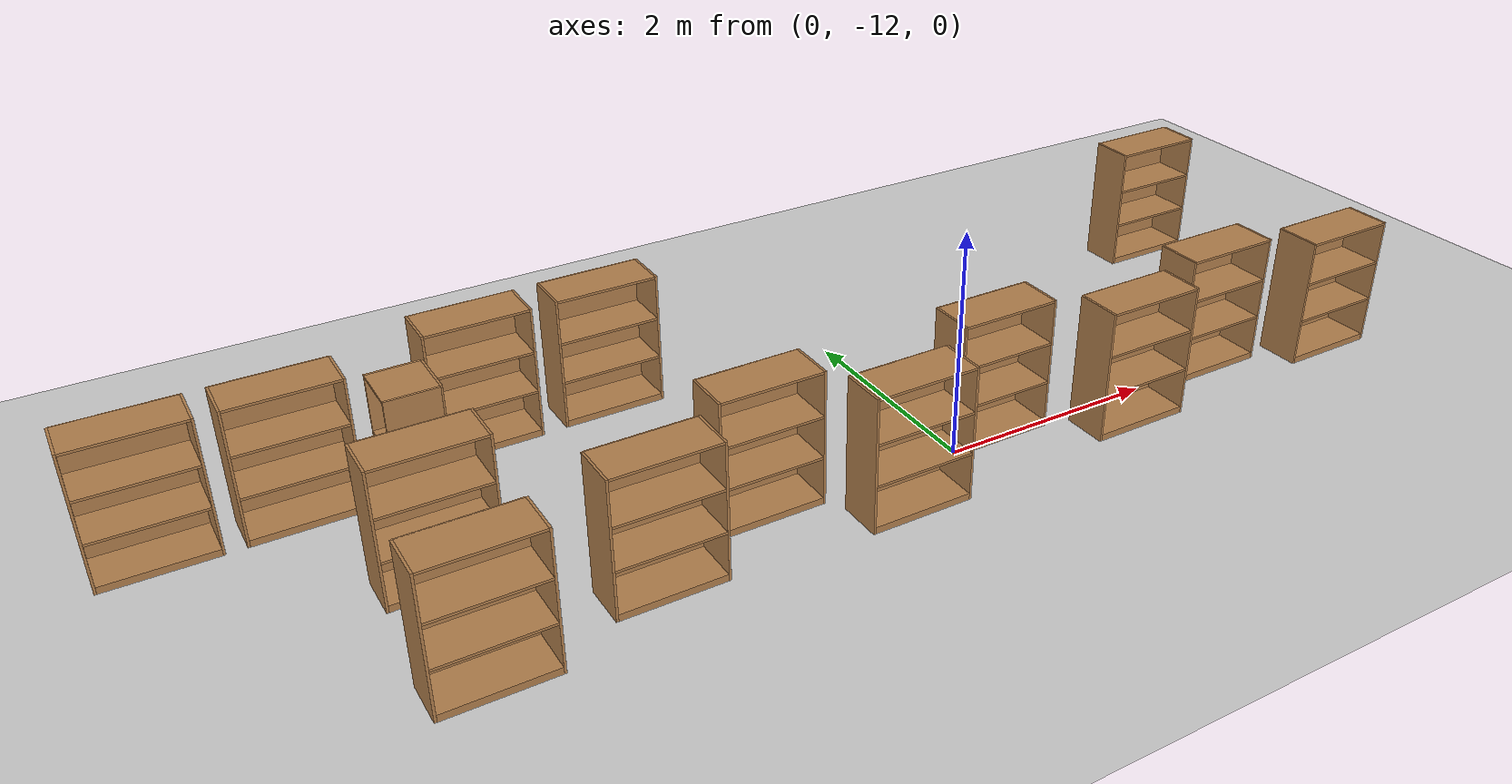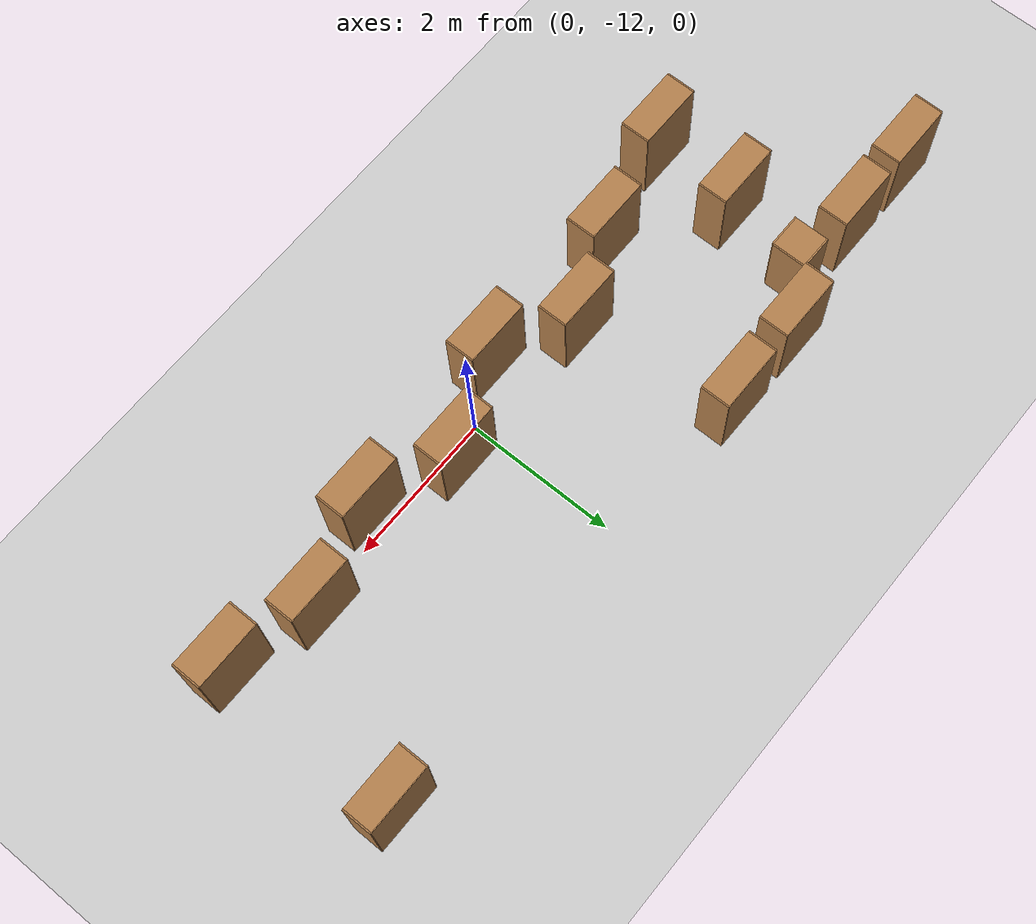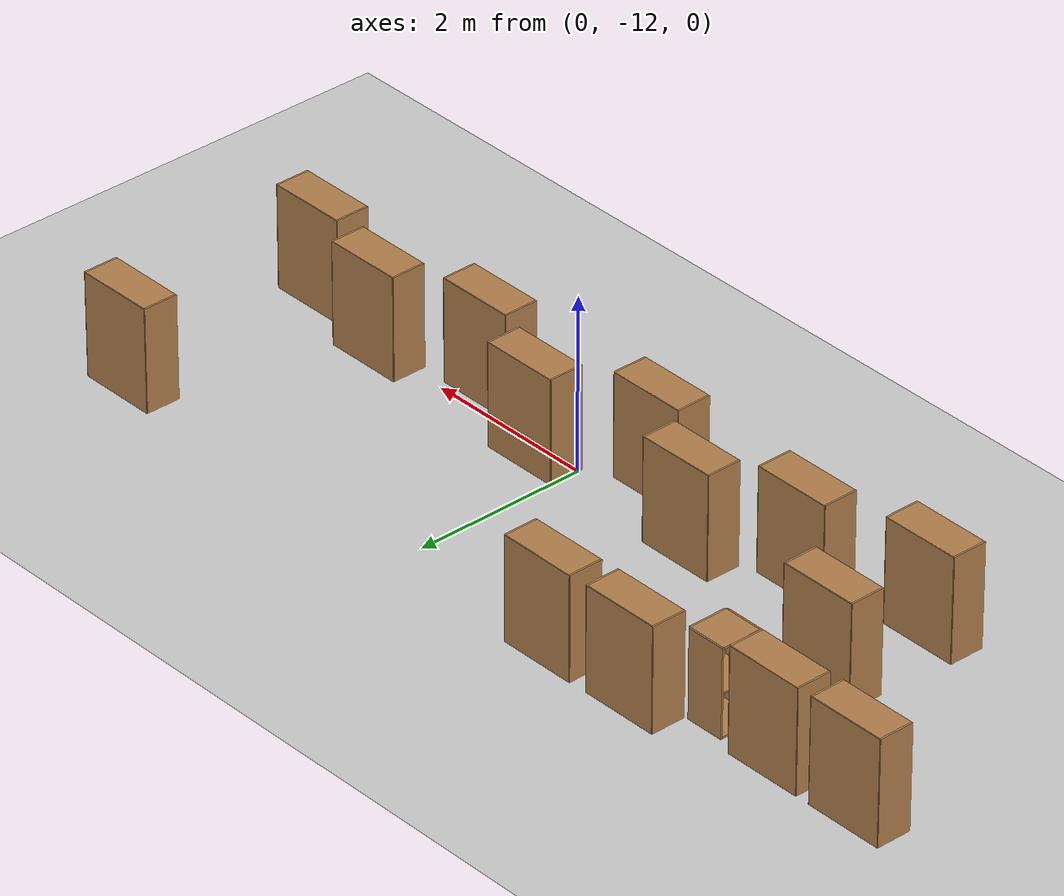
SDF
<sdf version="1.6">
 <world name="default">
  <model name="ground_plane">
   <static>1</static>
   <link name="link">
    <collision name="collision">
     <geometry><plane><normal>0 0 1</normal><size>100 100</size></plane></geometry>
     <surface>
      <contact><collide_bitmask>65535</collide_bitmask></contact>
      <friction><ode><mu>100</mu><mu2>50</mu2></ode></friction>
     </surface>
    </collision>
    <visual name="visual">
     <cast_shadows>0</cast_shadows>
     <geometry><plane><normal>0 0 1</normal><size>100 100</size></plane></geometry>
     <material>
      <script><uri>file://media/materials/scripts/gazebo.material</uri><name>Gazebo/Grey</name></script>
     </material>
    </visual>
   </link>
  </model>
  <model name="bookshelf_clone_3">
   <static>1</static>
   <link name="link">
    <inertial><mass>1</mass></inertial>
    <collision name="back">
     <pose>0 0.005 0.6 0 -0 0</pose>
     <geometry><box><size>0.9 0.01 1.2</size></box></geometry>
    </collision>
    <visual name="visual1">
     <pose>0 0.005 0.6 0 -0 0</pose>
     <geometry><box><size>0.9 0.01 1.2</size></box></geometry>
     <material>
      <script><uri>file://media/materials/scripts/gazebo.material</uri><name>Gazebo/Wood</name></script>
     </material>
    </visual>
    <collision name="left_side">
     <pose>0.45 -0.195 0.6 0 -0 0</pose>
     <geometry><box><size>0.02 0.4 1.2</size></box></geometry>
    </collision>
    <visual name="visual2">
     <pose>0.45 -0.195 0.6 0 -0 0</pose>
     <geometry><box><size>0.02 0.4 1.2</size></box></geometry>
     <material>
      <script><uri>file://media/materials/scripts/gazebo.material</uri><name>Gazebo/Wood</name></script>
     </material>
    </visual>
    <collision name="right_side">
     <pose>-0.45 -0.195 0.6 0 -0 0</pose>
     <geometry><box><size>0.02 0.4 1.2</size></box></geometry>
    </collision>
    <visual name="visual3">
     <pose>-0.45 -0.195 0.6 0 -0 0</pose>
     <geometry><box><size>0.02 0.4 1.2</size></box></geometry>
     <material>
      <script><uri>file://media/materials/scripts/gazebo.material</uri><name>Gazebo/Wood</name></script>
     </material>
    </visual>
    <collision name="bottom">
     <pose>0 -0.195 0.03 0 -0 0</pose>
     <geometry><box><size>0.88 0.4 0.06</size></box></geometry>
    </collision>
    <visual name="visual4">
     <pose>0 -0.195 0.03 0 -0 0</pose>
     <geometry><box><size>0.88 0.4 0.06</size></box></geometry>
     <material>
      <script><uri>file://media/materials/scripts/gazebo.material</uri><name>Gazebo/Wood</name></script>
     </material>
    </visual>
    <collision name="top">
     <pose>0 -0.195 1.19 0 -0 0</pose>
     <geometry><box><size>0.88 0.4 0.02</size></box></geometry>
    </collision>
    <visual name="visual5">
     <pose>0 -0.195 1.19 0 -0 0</pose>
     <geometry><box><size>0.88 0.4 0.02</size></box></geometry>
     <material>
      <script><uri>file://media/materials/scripts/gazebo.material</uri><name>Gazebo/Wood</name></script>
     </material>
    </visual>
    <collision name="low_shelf">
     <pose>0 -0.195 0.43 0 -0 0</pose>
     <geometry><box><size>0.88 0.4 0.02</size></box></geometry>
    </collision>
    <visual name="visual6">
     <pose>0 -0.195 0.43 0 -0 0</pose>
     <geometry><box><size>0.88 0.4 0.02</size></box></geometry>
     <material>
      <script><uri>file://media/materials/scripts/gazebo.material</uri><name>Gazebo/Wood</name></script>
     </material>
    </visual>
    <collision name="high_shelf">
     <pose>0 -0.195 0.8 0 -0 0</pose>
     <geometry><box><size>0.88 0.4 0.02</size></box></geometry>
    </collision>
    <visual name="visual7">
     <pose>0 -0.195 0.8 0 -0 0</pose>
     <geometry><box><size>0.88 0.4 0.02</size></box></geometry>
     <material>
      <script><uri>file://media/materials/scripts/gazebo.material</uri><name>Gazebo/Wood</name></script>
     </material>
    </visual>
   </link>
   <pose>4.005 -9.56624 0 0 -0 0</pose>
  </model>
  <model name="bookshelf_clone_11">
   <static>1</static>
   <link name="link">
    <inertial><mass>1</mass></inertial>
    <collision name="back">
     <pose>0 0.005 0.6 0 -0 0</pose>
     <geometry><box><size>0.9 0.01 1.2</size></box></geometry>
    </collision>
    <visual name="visual1">
     <pose>0 0.005 0.6 0 -0 0</pose>
     <geometry><box><size>0.9 0.01 1.2</size></box></geometry>
     <material>
      <script><uri>file://media/materials/scripts/gazebo.material</uri><name>Gazebo/Wood</name></script>
     </material>
    </visual>
    <collision name="left_side">
     <pose>0.45 -0.195 0.6 0 -0 0</pose>
     <geometry><box><size>0.02 0.4 1.2</size></box></geometry>
    </collision>
    <visual name="visual2">
     <pose>0.45 -0.195 0.6 0 -0 0</pose>
     <geometry><box><size>0.02 0.4 1.2</size></box></geometry>
     <material>
      <script><uri>file://media/materials/scripts/gazebo.material</uri><name>Gazebo/Wood</name></script>
     </material>
    </visual>
    <collision name="right_side">
     <pose>-0.45 -0.195 0.6 0 -0 0</pose>
     <geometry><box><size>0.02 0.4 1.2</size></box></geometry>
    </collision>
    <visual name="visual3">
     <pose>-0.45 -0.195 0.6 0 -0 0</pose>
     <geometry><box><size>0.02 0.4 1.2</size></box></geometry>
     <material>
      <script><uri>file://media/materials/scripts/gazebo.material</uri><name>Gazebo/Wood</name></script>
     </material>
    </visual>
    <collision name="bottom">
     <pose>0 -0.195 0.03 0 -0 0</pose>
     <geometry><box><size>0.88 0.4 0.06</size></box></geometry>
    </collision>
    <visual name="visual4">
     <pose>0 -0.195 0.03 0 -0 0</pose>
     <geometry><box><size>0.88 0.4 0.06</size></box></geometry>
     <material>
      <script><uri>file://media/materials/scripts/gazebo.material</uri><name>Gazebo/Wood</name></script>
     </material>
    </visual>
    <collision name="top">
     <pose>0 -0.195 1.19 0 -0 0</pose>
     <geometry><box><size>0.88 0.4 0.02</size></box></geometry>
    </collision>
    <visual name="visual5">
     <pose>0 -0.195 1.19 0 -0 0</pose>
     <geometry><box><size>0.88 0.4 0.02</size></box></geometry>
     <material>
      <script><uri>file://media/materials/scripts/gazebo.material</uri><name>Gazebo/Wood</name></script>
     </material>
    </visual>
    <collision name="low_shelf">
     <pose>0 -0.195 0.43 0 -0 0</pose>
     <geometry><box><size>0.88 0.4 0.02</size></box></geometry>
    </collision>
    <visual name="visual6">
     <pose>0 -0.195 0.43 0 -0 0</pose>
     <geometry><box><size>0.88 0.4 0.02</size></box></geometry>
     <material>
      <script><uri>file://media/materials/scripts/gazebo.material</uri><name>Gazebo/Wood</name></script>
     </material>
    </visual>
    <collision name="high_shelf">
     <pose>0 -0.195 0.8 0 -0 0</pose>
     <geometry><box><size>0.88 0.4 0.02</size></box></geometry>
    </collision>
    <visual name="visual7">
     <pose>0 -0.195 0.8 0 -0 0</pose>
     <geometry><box><size>0.88 0.4 0.02</size></box></geometry>
     <material>
      <script><uri>file://media/materials/scripts/gazebo.material</uri><name>Gazebo/Wood</name></script>
     </material>
    </visual>
   </link>
   <pose>-2.13004 -9.5778 0 0 -0 0</pose>
  </model>
  <model name="bookshelf_clone_16">
   <static>1</static>
   <link name="link">
    <inertial><mass>1</mass></inertial>
    <collision name="back">
     <pose>0 0.005 0.6 0 -0 0</pose>
     <geometry><box><size>0.9 0.01 1.2</size></box></geometry>
    </collision>
    <visual name="visual1">
     <pose>0 0.005 0.6 0 -0 0</pose>
     <geometry><box><size>0.9 0.01 1.2</size></box></geometry>
     <material>
      <script><uri>file://media/materials/scripts/gazebo.material</uri><name>Gazebo/Wood</name></script>
     </material>
    </visual>
    <collision name="left_side">
     <pose>0.45 -0.195 0.6 0 -0 0</pose>
     <geometry><box><size>0.02 0.4 1.2</size></box></geometry>
    </collision>
    <visual name="visual2">
     <pose>0.45 -0.195 0.6 0 -0 0</pose>
     <geometry><box><size>0.02 0.4 1.2</size></box></geometry>
     <material>
      <script><uri>file://media/materials/scripts/gazebo.material</uri><name>Gazebo/Wood</name></script>
     </material>
    </visual>
    <collision name="right_side">
     <pose>-0.45 -0.195 0.6 0 -0 0</pose>
     <geometry><box><size>0.02 0.4 1.2</size></box></geometry>
    </collision>
    <visual name="visual3">
     <pose>-0.45 -0.195 0.6 0 -0 0</pose>
     <geometry><box><size>0.02 0.4 1.2</size></box></geometry>
     <material>
      <script><uri>file://media/materials/scripts/gazebo.material</uri><name>Gazebo/Wood</name></script>
     </material>
    </visual>
    <collision name="bottom">
     <pose>0 -0.195 0.03 0 -0 0</pose>
     <geometry><box><size>0.88 0.4 0.06</size></box></geometry>
    </collision>
    <visual name="visual4">
     <pose>0 -0.195 0.03 0 -0 0</pose>
     <geometry><box><size>0.88 0.4 0.06</size></box></geometry>
     <material>
      <script><uri>file://media/materials/scripts/gazebo.material</uri><name>Gazebo/Wood</name></script>
     </material>
    </visual>
    <collision name="top">
     <pose>0 -0.195 1.19 0 -0 0</pose>
     <geometry><box><size>0.88 0.4 0.02</size></box></geometry>
    </collision>
    <visual name="visual5">
     <pose>0 -0.195 1.19 0 -0 0</pose>
     <geometry><box><size>0.88 0.4 0.02</size></box></geometry>
     <material>
      <script><uri>file://media/materials/scripts/gazebo.material</uri><name>Gazebo/Wood</name></script>
     </material>
    </visual>
    <collision name="low_shelf">
     <pose>0 -0.195 0.43 0 -0 0</pose>
     <geometry><box><size>0.88 0.4 0.02</size></box></geometry>
    </collision>
    <visual name="visual6">
     <pose>0 -0.195 0.43 0 -0 0</pose>
     <geometry><box><size>0.88 0.4 0.02</size></box></geometry>
     <material>
      <script><uri>file://media/materials/scripts/gazebo.material</uri><name>Gazebo/Wood</name></script>
     </material>
    </visual>
    <collision name="high_shelf">
     <pose>0 -0.195 0.8 0 -0 0</pose>
     <geometry><box><size>0.88 0.4 0.02</size></box></geometry>
    </collision>
    <visual name="visual7">
     <pose>0 -0.195 0.8 0 -0 0</pose>
     <geometry><box><size>0.88 0.4 0.02</size></box></geometry>
     <material>
      <script><uri>file://media/materials/scripts/gazebo.material</uri><name>Gazebo/Wood</name></script>
     </material>
    </visual>
   </link>
   <pose>-3.25509 -9.58988 0 0 -0 0</pose>
  </model>
  <model name="cabinet_1">
   <static>1</static>
   <link name="cabinet_bottom_plate">
    <inertial>
     <pose>0 0 -1 0 -0 0</pose>
     <inertia><ixx>2.05</ixx><ixy>0</ixy><ixz>0</ixz><iyy>2.05</iyy><iyz>0</iyz><izz>2.05</izz></inertia>
     <mass>25</mass>
    </inertial>
    <collision name="cabinet_bottom_plate_geom">
     <pose>0 0 0.01 0 -0 0</pose>
     <geometry><box><size>0.45 0.45 0.02</size></box></geometry>
    </collision>
    <visual name="cabinet_bottom_plate_geom_visual">
     <pose>0 0 0.01 0 -0 0</pose>
     <geometry><box><size>0.45 0.45 0.02</size></box></geometry>
     <material>
      <script><uri>file://media/materials/scripts/gazebo.material</uri><name>Gazebo/Wood</name></script>
     </material>
    </visual>
    <collision name="cabinet_bottom_plate_geom_cabinet_back_plate">
     <pose>0.235 0 0.51 0 -0 0</pose>
     <geometry><box><size>0.02 0.45 1.02</size></box></geometry>
    </collision>
    <visual name="cabinet_bottom_plate_geom_cabinet_back_plate_visual">
     <pose>0.235 0 0.51 0 -0 0</pose>
     <geometry><box><size>0.02 0.45 1.02</size></box></geometry>
     <material>
      <script><uri>file://media/materials/scripts/gazebo.material</uri><name>Gazebo/Wood</name></script>
     </material>
    </visual>
    <collision name="cabinet_bottom_plate_geom_cabinet_left_plate">
     <pose>0 0.235 0.51 0 -0 0</pose>
     <geometry><box><size>0.45 0.02 1.02</size></box></geometry>
    </collision>
    <visual name="cabinet_bottom_plate_geom_cabinet_left_plate_visual">
     <pose>0 0.235 0.51 0 -0 0</pose>
     <geometry><box><size>0.45 0.02 1.02</size></box></geometry>
     <material>
      <script><uri>file://media/materials/scripts/gazebo.material</uri><name>Gazebo/Wood</name></script>
     </material>
    </visual>
    <collision name="cabinet_bottom_plate_geom_cabinet_middle_plate">
     <pose>0 0 0.51 0 -0 0</pose>
     <geometry><box><size>0.45 0.45 0.02</size></box></geometry>
    </collision>
    <visual name="cabinet_bottom_plate_geom_cabinet_middle_plate_visual">
     <pose>0 0 0.51 0 -0 0</pose>
     <geometry><box><size>0.45 0.45 0.02</size></box></geometry>
     <material>
      <script><uri>file://media/materials/scripts/gazebo.material</uri><name>Gazebo/Wood</name></script>
     </material>
    </visual>
    <collision name="cabinet_bottom_plate_geom_cabinet_right_plate">
     <pose>0 -0.235 0.51 0 -0 0</pose>
     <geometry><box><size>0.45 0.02 1.02</size></box></geometry>
    </collision>
    <visual name="cabinet_bottom_plate_geom_cabinet_right_plate_visual">
     <pose>0 -0.235 0.51 0 -0 0</pose>
     <geometry><box><size>0.45 0.02 1.02</size></box></geometry>
     <material>
      <script><uri>file://media/materials/scripts/gazebo.material</uri><name>Gazebo/Wood</name></script>
     </material>
    </visual>
    <collision name="cabinet_bottom_plate_geom_cabinet_top_plate">
     <pose>0 0 1.01 0 -0 0</pose>
     <geometry><box><size>0.45 0.45 0.02</size></box></geometry>
    </collision>
    <visual name="cabinet_bottom_plate_geom_cabinet_top_plate_visual">
     <pose>0 0 1.01 0 -0 0</pose>
     <geometry><box><size>0.45 0.45 0.02</size></box></geometry>
     <material>
      <script><uri>file://media/materials/scripts/gazebo.material</uri><name>Gazebo/Wood</name></script>
     </material>
    </visual>
   </link>
   <pose>-3.97477 -10.2411 0 0 -0 0</pose>
  </model>
  <model name="bookshelf_clone_17">
   <static>1</static>
   <link name="link">
    <inertial><mass>1</mass></inertial>
    <collision name="back">
     <pose>0 0.005 0.6 0 -0 0</pose>
     <geometry><box><size>0.9 0.01 1.2</size></box></geometry>
    </collision>
    <visual name="visual1">
     <pose>0 0.005 0.6 0 -0 0</pose>
     <geometry><box><size>0.9 0.01 1.2</size></box></geometry>
     <material>
      <script><uri>file://media/materials/scripts/gazebo.material</uri><name>Gazebo/Wood</name></script>
     </material>
    </visual>
    <collision name="left_side">
     <pose>0.45 -0.195 0.6 0 -0 0</pose>
     <geometry><box><size>0.02 0.4 1.2</size></box></geometry>
    </collision>
    <visual name="visual2">
     <pose>0.45 -0.195 0.6 0 -0 0</pose>
     <geometry><box><size>0.02 0.4 1.2</size></box></geometry>
     <material>
      <script><uri>file://media/materials/scripts/gazebo.material</uri><name>Gazebo/Wood</name></script>
     </material>
    </visual>
    <collision name="right_side">
     <pose>-0.45 -0.195 0.6 0 -0 0</pose>
     <geometry><box><size>0.02 0.4 1.2</size></box></geometry>
    </collision>
    <visual name="visual3">
     <pose>-0.45 -0.195 0.6 0 -0 0</pose>
     <geometry><box><size>0.02 0.4 1.2</size></box></geometry>
     <material>
      <script><uri>file://media/materials/scripts/gazebo.material</uri><name>Gazebo/Wood</name></script>
     </material>
    </visual>
    <collision name="bottom">
     <pose>0 -0.195 0.03 0 -0 0</pose>
     <geometry><box><size>0.88 0.4 0.06</size></box></geometry>
    </collision>
    <visual name="visual4">
     <pose>0 -0.195 0.03 0 -0 0</pose>
     <geometry><box><size>0.88 0.4 0.06</size></box></geometry>
     <material>
      <script><uri>file://media/materials/scripts/gazebo.material</uri><name>Gazebo/Wood</name></script>
     </material>
    </visual>
    <collision name="top">
     <pose>0 -0.195 1.19 0 -0 0</pose>
     <geometry><box><size>0.88 0.4 0.02</size></box></geometry>
    </collision>
    <visual name="visual5">
     <pose>0 -0.195 1.19 0 -0 0</pose>
     <geometry><box><size>0.88 0.4 0.02</size></box></geometry>
     <material>
      <script><uri>file://media/materials/scripts/gazebo.material</uri><name>Gazebo/Wood</name></script>
     </material>
    </visual>
    <collision name="low_shelf">
     <pose>0 -0.195 0.43 0 -0 0</pose>
     <geometry><box><size>0.88 0.4 0.02</size></box></geometry>
    </collision>
    <visual name="visual6">
     <pose>0 -0.195 0.43 0 -0 0</pose>
     <geometry><box><size>0.88 0.4 0.02</size></box></geometry>
     <material>
      <script><uri>file://media/materials/scripts/gazebo.material</uri><name>Gazebo/Wood</name></script>
     </material>
    </visual>
    <collision name="high_shelf">
     <pose>0 -0.195 0.8 0 -0 0</pose>
     <geometry><box><size>0.88 0.4 0.02</size></box></geometry>
    </collision>
    <visual name="visual7">
     <pose>0 -0.195 0.8 0 -0 0</pose>
     <geometry><box><size>0.88 0.4 0.02</size></box></geometry>
     <material>
      <script><uri>file://media/materials/scripts/gazebo.material</uri><name>Gazebo/Wood</name></script>
     </material>
    </visual>
   </link>
   <pose>-4.19592 -11.2009 0 0 -0 0</pose>
  </model>
  <model name="bookshelf_clone_18">
   <static>1</static>
   <link name="link">
    <inertial><mass>1</mass></inertial>
    <collision name="back">
     <pose>0 0.005 0.6 0 -0 0</pose>
     <geometry><box><size>0.9 0.01 1.2</size></box></geometry>
    </collision>
    <visual name="visual1">
     <pose>0 0.005 0.6 0 -0 0</pose>
     <geometry><box><size>0.9 0.01 1.2</size></box></geometry>
     <material>
      <script><uri>file://media/materials/scripts/gazebo.material</uri><name>Gazebo/Wood</name></script>
     </material>
    </visual>
    <collision name="left_side">
     <pose>0.45 -0.195 0.6 0 -0 0</pose>
     <geometry><box><size>0.02 0.4 1.2</size></box></geometry>
    </collision>
    <visual name="visual2">
     <pose>0.45 -0.195 0.6 0 -0 0</pose>
     <geometry><box><size>0.02 0.4 1.2</size></box></geometry>
     <material>
      <script><uri>file://media/materials/scripts/gazebo.material</uri><name>Gazebo/Wood</name></script>
     </material>
    </visual>
    <collision name="right_side">
     <pose>-0.45 -0.195 0.6 0 -0 0</pose>
     <geometry><box><size>0.02 0.4 1.2</size></box></geometry>
    </collision>
    <visual name="visual3">
     <pose>-0.45 -0.195 0.6 0 -0 0</pose>
     <geometry><box><size>0.02 0.4 1.2</size></box></geometry>
     <material>
      <script><uri>file://media/materials/scripts/gazebo.material</uri><name>Gazebo/Wood</name></script>
     </material>
    </visual>
    <collision name="bottom">
     <pose>0 -0.195 0.03 0 -0 0</pose>
     <geometry><box><size>0.88 0.4 0.06</size></box></geometry>
    </collision>
    <visual name="visual4">
     <pose>0 -0.195 0.03 0 -0 0</pose>
     <geometry><box><size>0.88 0.4 0.06</size></box></geometry>
     <material>
      <script><uri>file://media/materials/scripts/gazebo.material</uri><name>Gazebo/Wood</name></script>
     </material>
    </visual>
    <collision name="top">
     <pose>0 -0.195 1.19 0 -0 0</pose>
     <geometry><box><size>0.88 0.4 0.02</size></box></geometry>
    </collision>
    <visual name="visual5">
     <pose>0 -0.195 1.19 0 -0 0</pose>
     <geometry><box><size>0.88 0.4 0.02</size></box></geometry>
     <material>
      <script><uri>file://media/materials/scripts/gazebo.material</uri><name>Gazebo/Wood</name></script>
     </material>
    </visual>
    <collision name="low_shelf">
     <pose>0 -0.195 0.43 0 -0 0</pose>
     <geometry><box><size>0.88 0.4 0.02</size></box></geometry>
    </collision>
    <visual name="visual6">
     <pose>0 -0.195 0.43 0 -0 0</pose>
     <geometry><box><size>0.88 0.4 0.02</size></box></geometry>
     <material>
      <script><uri>file://media/materials/scripts/gazebo.material</uri><name>Gazebo/Wood</name></script>
     </material>
    </visual>
    <collision name="high_shelf">
     <pose>0 -0.195 0.8 0 -0 0</pose>
     <geometry><box><size>0.88 0.4 0.02</size></box></geometry>
    </collision>
    <visual name="visual7">
     <pose>0 -0.195 0.8 0 -0 0</pose>
     <geometry><box><size>0.88 0.4 0.02</size></box></geometry>
     <material>
      <script><uri>file://media/materials/scripts/gazebo.material</uri><name>Gazebo/Wood</name></script>
     </material>
    </visual>
   </link>
   <pose>-4.26956 -12.4317 0 0 -0 0</pose>
  </model>
  <model name="bookshelf_clone_17_clone">
   <static>1</static>
   <link name="link">
    <inertial><mass>1</mass></inertial>
    <collision name="back">
     <pose>0 0.005 0.6 0 -0 0</pose>
     <geometry><box><size>0.9 0.01 1.2</size></box></geometry>
    </collision>
    <visual name="visual1">
     <pose>0 0.005 0.6 0 -0 0</pose>
     <geometry><box><size>0.9 0.01 1.2</size></box></geometry>
     <material>
      <script><uri>file://media/materials/scripts/gazebo.material</uri><name>Gazebo/Wood</name></script>
     </material>
    </visual>
    <collision name="left_side">
     <pose>0.45 -0.195 0.6 0 -0 0</pose>
     <geometry><box><size>0.02 0.4 1.2</size></box></geometry>
    </collision>
    <visual name="visual2">
     <pose>0.45 -0.195 0.6 0 -0 0</pose>
     <geometry><box><size>0.02 0.4 1.2</size></box></geometry>
     <material>
      <script><uri>file://media/materials/scripts/gazebo.material</uri><name>Gazebo/Wood</name></script>
     </material>
    </visual>
    <collision name="right_side">
     <pose>-0.45 -0.195 0.6 0 -0 0</pose>
     <geometry><box><size>0.02 0.4 1.2</size></box></geometry>
    </collision>
    <visual name="visual3">
     <pose>-0.45 -0.195 0.6 0 -0 0</pose>
     <geometry><box><size>0.02 0.4 1.2</size></box></geometry>
     <material>
      <script><uri>file://media/materials/scripts/gazebo.material</uri><name>Gazebo/Wood</name></script>
     </material>
    </visual>
    <collision name="bottom">
     <pose>0 -0.195 0.03 0 -0 0</pose>
     <geometry><box><size>0.88 0.4 0.06</size></box></geometry>
    </collision>
    <visual name="visual4">
     <pose>0 -0.195 0.03 0 -0 0</pose>
     <geometry><box><size>0.88 0.4 0.06</size></box></geometry>
     <material>
      <script><uri>file://media/materials/scripts/gazebo.material</uri><name>Gazebo/Wood</name></script>
     </material>
    </visual>
    <collision name="top">
     <pose>0 -0.195 1.19 0 -0 0</pose>
     <geometry><box><size>0.88 0.4 0.02</size></box></geometry>
    </collision>
    <visual name="visual5">
     <pose>0 -0.195 1.19 0 -0 0</pose>
     <geometry><box><size>0.88 0.4 0.02</size></box></geometry>
     <material>
      <script><uri>file://media/materials/scripts/gazebo.material</uri><name>Gazebo/Wood</name></script>
     </material>
    </visual>
    <collision name="low_shelf">
     <pose>0 -0.195 0.43 0 -0 0</pose>
     <geometry><box><size>0.88 0.4 0.02</size></box></geometry>
    </collision>
    <visual name="visual6">
     <pose>0 -0.195 0.43 0 -0 0</pose>
     <geometry><box><size>0.88 0.4 0.02</size></box></geometry>
     <material>
      <script><uri>file://media/materials/scripts/gazebo.material</uri><name>Gazebo/Wood</name></script>
     </material>
    </visual>
    <collision name="high_shelf">
     <pose>0 -0.195 0.8 0 -0 0</pose>
     <geometry><box><size>0.88 0.4 0.02</size></box></geometry>
    </collision>
    <visual name="visual7">
     <pose>0 -0.195 0.8 0 -0 0</pose>
     <geometry><box><size>0.88 0.4 0.02</size></box></geometry>
     <material>
      <script><uri>file://media/materials/scripts/gazebo.material</uri><name>Gazebo/Wood</name></script>
     </material>
    </visual>
   </link>
   <pose>-2.84988 -12.129 0 0 -0 0</pose>
  </model>
  <model name="bookshelf_clone_17_clone_1">
   <static>1</static>
   <link name="link">
    <inertial><mass>1</mass></inertial>
    <collision name="back">
     <pose>0 0.005 0.6 0 -0 0</pose>
     <geometry><box><size>0.9 0.01 1.2</size></box></geometry>
    </collision>
    <visual name="visual1">
     <pose>0 0.005 0.6 0 -0 0</pose>
     <geometry><box><size>0.9 0.01 1.2</size></box></geometry>
     <material>
      <script><uri>file://media/materials/scripts/gazebo.material</uri><name>Gazebo/Wood</name></script>
     </material>
    </visual>
    <collision name="left_side">
     <pose>0.45 -0.195 0.6 0 -0 0</pose>
     <geometry><box><size>0.02 0.4 1.2</size></box></geometry>
    </collision>
    <visual name="visual2">
     <pose>0.45 -0.195 0.6 0 -0 0</pose>
     <geometry><box><size>0.02 0.4 1.2</size></box></geometry>
     <material>
      <script><uri>file://media/materials/scripts/gazebo.material</uri><name>Gazebo/Wood</name></script>
     </material>
    </visual>
    <collision name="right_side">
     <pose>-0.45 -0.195 0.6 0 -0 0</pose>
     <geometry><box><size>0.02 0.4 1.2</size></box></geometry>
    </collision>
    <visual name="visual3">
     <pose>-0.45 -0.195 0.6 0 -0 0</pose>
     <geometry><box><size>0.02 0.4 1.2</size></box></geometry>
     <material>
      <script><uri>file://media/materials/scripts/gazebo.material</uri><name>Gazebo/Wood</name></script>
     </material>
    </visual>
    <collision name="bottom">
     <pose>0 -0.195 0.03 0 -0 0</pose>
     <geometry><box><size>0.88 0.4 0.06</size></box></geometry>
    </collision>
    <visual name="visual4">
     <pose>0 -0.195 0.03 0 -0 0</pose>
     <geometry><box><size>0.88 0.4 0.06</size></box></geometry>
     <material>
      <script><uri>file://media/materials/scripts/gazebo.material</uri><name>Gazebo/Wood</name></script>
     </material>
    </visual>
    <collision name="top">
     <pose>0 -0.195 1.19 0 -0 0</pose>
     <geometry><box><size>0.88 0.4 0.02</size></box></geometry>
    </collision>
    <visual name="visual5">
     <pose>0 -0.195 1.19 0 -0 0</pose>
     <geometry><box><size>0.88 0.4 0.02</size></box></geometry>
     <material>
      <script><uri>file://media/materials/scripts/gazebo.material</uri><name>Gazebo/Wood</name></script>
     </material>
    </visual>
    <collision name="low_shelf">
     <pose>0 -0.195 0.43 0 -0 0</pose>
     <geometry><box><size>0.88 0.4 0.02</size></box></geometry>
    </collision>
    <visual name="visual6">
     <pose>0 -0.195 0.43 0 -0 0</pose>
     <geometry><box><size>0.88 0.4 0.02</size></box></geometry>
     <material>
      <script><uri>file://media/materials/scripts/gazebo.material</uri><name>Gazebo/Wood</name></script>
     </material>
    </visual>
    <collision name="high_shelf">
     <pose>0 -0.195 0.8 0 -0 0</pose>
     <geometry><box><size>0.88 0.4 0.02</size></box></geometry>
    </collision>
    <visual name="visual7">
     <pose>0 -0.195 0.8 0 -0 0</pose>
     <geometry><box><size>0.88 0.4 0.02</size></box></geometry>
     <material>
      <script><uri>file://media/materials/scripts/gazebo.material</uri><name>Gazebo/Wood</name></script>
     </material>
    </visual>
   </link>
   <pose>-1.75218 -11.6638 0 0 -0 0</pose>
  </model>
  <model name="bookshelf_clone_17_clone_2">
   <static>1</static>
   <link name="link">
    <inertial><mass>1</mass></inertial>
    <collision name="back">
     <pose>0 0.005 0.6 0 -0 0</pose>
     <geometry><box><size>0.9 0.01 1.2</size></box></geometry>
    </collision>
    <visual name="visual1">
     <pose>0 0.005 0.6 0 -0 0</pose>
     <geometry><box><size>0.9 0.01 1.2</size></box></geometry>
     <material>
      <script><uri>file://media/materials/scripts/gazebo.material</uri><name>Gazebo/Wood</name></script>
     </material>
    </visual>
    <collision name="left_side">
     <pose>0.45 -0.195 0.6 0 -0 0</pose>
     <geometry><box><size>0.02 0.4 1.2</size></box></geometry>
    </collision>
    <visual name="visual2">
     <pose>0.45 -0.195 0.6 0 -0 0</pose>
     <geometry><box><size>0.02 0.4 1.2</size></box></geometry>
     <material>
      <script><uri>file://media/materials/scripts/gazebo.material</uri><name>Gazebo/Wood</name></script>
     </material>
    </visual>
    <collision name="right_side">
     <pose>-0.45 -0.195 0.6 0 -0 0</pose>
     <geometry><box><size>0.02 0.4 1.2</size></box></geometry>
    </collision>
    <visual name="visual3">
     <pose>-0.45 -0.195 0.6 0 -0 0</pose>
     <geometry><box><size>0.02 0.4 1.2</size></box></geometry>
     <material>
      <script><uri>file://media/materials/scripts/gazebo.material</uri><name>Gazebo/Wood</name></script>
     </material>
    </visual>
    <collision name="bottom">
     <pose>0 -0.195 0.03 0 -0 0</pose>
     <geometry><box><size>0.88 0.4 0.06</size></box></geometry>
    </collision>
    <visual name="visual4">
     <pose>0 -0.195 0.03 0 -0 0</pose>
     <geometry><box><size>0.88 0.4 0.06</size></box></geometry>
     <material>
      <script><uri>file://media/materials/scripts/gazebo.material</uri><name>Gazebo/Wood</name></script>
     </material>
    </visual>
    <collision name="top">
     <pose>0 -0.195 1.19 0 -0 0</pose>
     <geometry><box><size>0.88 0.4 0.02</size></box></geometry>
    </collision>
    <visual name="visual5">
     <pose>0 -0.195 1.19 0 -0 0</pose>
     <geometry><box><size>0.88 0.4 0.02</size></box></geometry>
     <material>
      <script><uri>file://media/materials/scripts/gazebo.material</uri><name>Gazebo/Wood</name></script>
     </material>
    </visual>
    <collision name="low_shelf">
     <pose>0 -0.195 0.43 0 -0 0</pose>
     <geometry><box><size>0.88 0.4 0.02</size></box></geometry>
    </collision>
    <visual name="visual6">
     <pose>0 -0.195 0.43 0 -0 0</pose>
     <geometry><box><size>0.88 0.4 0.02</size></box></geometry>
     <material>
      <script><uri>file://media/materials/scripts/gazebo.material</uri><name>Gazebo/Wood</name></script>
     </material>
    </visual>
    <collision name="high_shelf">
     <pose>0 -0.195 0.8 0 -0 0</pose>
     <geometry><box><size>0.88 0.4 0.02</size></box></geometry>
    </collision>
    <visual name="visual7">
     <pose>0 -0.195 0.8 0 -0 0</pose>
     <geometry><box><size>0.88 0.4 0.02</size></box></geometry>
     <material>
      <script><uri>file://media/materials/scripts/gazebo.material</uri><name>Gazebo/Wood</name></script>
     </material>
    </visual>
   </link>
   <pose>-0.739591 -12.2077 0 0 -0 0</pose>
  </model>
  <model name="bookshelf_clone_17_clone_3">
   <static>1</static>
   <link name="link">
    <inertial><mass>1</mass></inertial>
    <collision name="back">
     <pose>0 0.005 0.6 0 -0 0</pose>
     <geometry><box><size>0.9 0.01 1.2</size></box></geometry>
    </collision>
    <visual name="visual1">
     <pose>0 0.005 0.6 0 -0 0</pose>
     <geometry><box><size>0.9 0.01 1.2</size></box></geometry>
     <material>
      <script><uri>file://media/materials/scripts/gazebo.material</uri><name>Gazebo/Wood</name></script>
     </material>
    </visual>
    <collision name="left_side">
     <pose>0.45 -0.195 0.6 0 -0 0</pose>
     <geometry><box><size>0.02 0.4 1.2</size></box></geometry>
    </collision>
    <visual name="visual2">
     <pose>0.45 -0.195 0.6 0 -0 0</pose>
     <geometry><box><size>0.02 0.4 1.2</size></box></geometry>
     <material>
      <script><uri>file://media/materials/scripts/gazebo.material</uri><name>Gazebo/Wood</name></script>
     </material>
    </visual>
    <collision name="right_side">
     <pose>-0.45 -0.195 0.6 0 -0 0</pose>
     <geometry><box><size>0.02 0.4 1.2</size></box></geometry>
    </collision>
    <visual name="visual3">
     <pose>-0.45 -0.195 0.6 0 -0 0</pose>
     <geometry><box><size>0.02 0.4 1.2</size></box></geometry>
     <material>
      <script><uri>file://media/materials/scripts/gazebo.material</uri><name>Gazebo/Wood</name></script>
     </material>
    </visual>
    <collision name="bottom">
     <pose>0 -0.195 0.03 0 -0 0</pose>
     <geometry><box><size>0.88 0.4 0.06</size></box></geometry>
    </collision>
    <visual name="visual4">
     <pose>0 -0.195 0.03 0 -0 0</pose>
     <geometry><box><size>0.88 0.4 0.06</size></box></geometry>
     <material>
      <script><uri>file://media/materials/scripts/gazebo.material</uri><name>Gazebo/Wood</name></script>
     </material>
    </visual>
    <collision name="top">
     <pose>0 -0.195 1.19 0 -0 0</pose>
     <geometry><box><size>0.88 0.4 0.02</size></box></geometry>
    </collision>
    <visual name="visual5">
     <pose>0 -0.195 1.19 0 -0 0</pose>
     <geometry><box><size>0.88 0.4 0.02</size></box></geometry>
     <material>
      <script><uri>file://media/materials/scripts/gazebo.material</uri><name>Gazebo/Wood</name></script>
     </material>
    </visual>
    <collision name="low_shelf">
     <pose>0 -0.195 0.43 0 -0 0</pose>
     <geometry><box><size>0.88 0.4 0.02</size></box></geometry>
    </collision>
    <visual name="visual6">
     <pose>0 -0.195 0.43 0 -0 0</pose>
     <geometry><box><size>0.88 0.4 0.02</size></box></geometry>
     <material>
      <script><uri>file://media/materials/scripts/gazebo.material</uri><name>Gazebo/Wood</name></script>
     </material>
    </visual>
    <collision name="high_shelf">
     <pose>0 -0.195 0.8 0 -0 0</pose>
     <geometry><box><size>0.88 0.4 0.02</size></box></geometry>
    </collision>
    <visual name="visual7">
     <pose>0 -0.195 0.8 0 -0 0</pose>
     <geometry><box><size>0.88 0.4 0.02</size></box></geometry>
     <material>
      <script><uri>file://media/materials/scripts/gazebo.material</uri><name>Gazebo/Wood</name></script>
     </material>
    </visual>
   </link>
   <pose>0.460769 -11.6594 0 0 -0 0</pose>
  </model>
  <model name="bookshelf_clone_17_clone_4">
   <static>1</static>
   <link name="link">
    <inertial><mass>1</mass></inertial>
    <collision name="back">
     <pose>0 0.005 0.6 0 -0 0</pose>
     <geometry><box><size>0.9 0.01 1.2</size></box></geometry>
    </collision>
    <visual name="visual1">
     <pose>0 0.005 0.6 0 -0 0</pose>
     <geometry><box><size>0.9 0.01 1.2</size></box></geometry>
     <material>
      <script><uri>file://media/materials/scripts/gazebo.material</uri><name>Gazebo/Wood</name></script>
     </material>
    </visual>
    <collision name="left_side">
     <pose>0.45 -0.195 0.6 0 -0 0</pose>
     <geometry><box><size>0.02 0.4 1.2</size></box></geometry>
    </collision>
    <visual name="visual2">
     <pose>0.45 -0.195 0.6 0 -0 0</pose>
     <geometry><box><size>0.02 0.4 1.2</size></box></geometry>
     <material>
      <script><uri>file://media/materials/scripts/gazebo.material</uri><name>Gazebo/Wood</name></script>
     </material>
    </visual>
    <collision name="right_side">
     <pose>-0.45 -0.195 0.6 0 -0 0</pose>
     <geometry><box><size>0.02 0.4 1.2</size></box></geometry>
    </collision>
    <visual name="visual3">
     <pose>-0.45 -0.195 0.6 0 -0 0</pose>
     <geometry><box><size>0.02 0.4 1.2</size></box></geometry>
     <material>
      <script><uri>file://media/materials/scripts/gazebo.material</uri><name>Gazebo/Wood</name></script>
     </material>
    </visual>
    <collision name="bottom">
     <pose>0 -0.195 0.03 0 -0 0</pose>
     <geometry><box><size>0.88 0.4 0.06</size></box></geometry>
    </collision>
    <visual name="visual4">
     <pose>0 -0.195 0.03 0 -0 0</pose>
     <geometry><box><size>0.88 0.4 0.06</size></box></geometry>
     <material>
      <script><uri>file://media/materials/scripts/gazebo.material</uri><name>Gazebo/Wood</name></script>
     </material>
    </visual>
    <collision name="top">
     <pose>0 -0.195 1.19 0 -0 0</pose>
     <geometry><box><size>0.88 0.4 0.02</size></box></geometry>
    </collision>
    <visual name="visual5">
     <pose>0 -0.195 1.19 0 -0 0</pose>
     <geometry><box><size>0.88 0.4 0.02</size></box></geometry>
     <material>
      <script><uri>file://media/materials/scripts/gazebo.material</uri><name>Gazebo/Wood</name></script>
     </material>
    </visual>
    <collision name="low_shelf">
     <pose>0 -0.195 0.43 0 -0 0</pose>
     <geometry><box><size>0.88 0.4 0.02</size></box></geometry>
    </collision>
    <visual name="visual6">
     <pose>0 -0.195 0.43 0 -0 0</pose>
     <geometry><box><size>0.88 0.4 0.02</size></box></geometry>
     <material>
      <script><uri>file://media/materials/scripts/gazebo.material</uri><name>Gazebo/Wood</name></script>
     </material>
    </visual>
    <collision name="high_shelf">
     <pose>0 -0.195 0.8 0 -0 0</pose>
     <geometry><box><size>0.88 0.4 0.02</size></box></geometry>
    </collision>
    <visual name="visual7">
     <pose>0 -0.195 0.8 0 -0 0</pose>
     <geometry><box><size>0.88 0.4 0.02</size></box></geometry>
     <material>
      <script><uri>file://media/materials/scripts/gazebo.material</uri><name>Gazebo/Wood</name></script>
     </material>
    </visual>
   </link>
   <pose>1.60845 -12.1001 0 0 -0 0</pose>
  </model>
  <model name="bookshelf_clone_17_clone_5">
   <static>1</static>
   <link name="link">
    <inertial><mass>1</mass></inertial>
    <collision name="back">
     <pose>0 0.005 0.6 0 -0 0</pose>
     <geometry><box><size>0.9 0.01 1.2</size></box></geometry>
    </collision>
    <visual name="visual1">
     <pose>0 0.005 0.6 0 -0 0</pose>
     <geometry><box><size>0.9 0.01 1.2</size></box></geometry>
     <material>
      <script><uri>file://media/materials/scripts/gazebo.material</uri><name>Gazebo/Wood</name></script>
     </material>
    </visual>
    <collision name="left_side">
     <pose>0.45 -0.195 0.6 0 -0 0</pose>
     <geometry><box><size>0.02 0.4 1.2</size></box></geometry>
    </collision>
    <visual name="visual2">
     <pose>0.45 -0.195 0.6 0 -0 0</pose>
     <geometry><box><size>0.02 0.4 1.2</size></box></geometry>
     <material>
      <script><uri>file://media/materials/scripts/gazebo.material</uri><name>Gazebo/Wood</name></script>
     </material>
    </visual>
    <collision name="right_side">
     <pose>-0.45 -0.195 0.6 0 -0 0</pose>
     <geometry><box><size>0.02 0.4 1.2</size></box></geometry>
    </collision>
    <visual name="visual3">
     <pose>-0.45 -0.195 0.6 0 -0 0</pose>
     <geometry><box><size>0.02 0.4 1.2</size></box></geometry>
     <material>
      <script><uri>file://media/materials/scripts/gazebo.material</uri><name>Gazebo/Wood</name></script>
     </material>
    </visual>
    <collision name="bottom">
     <pose>0 -0.195 0.03 0 -0 0</pose>
     <geometry><box><size>0.88 0.4 0.06</size></box></geometry>
    </collision>
    <visual name="visual4">
     <pose>0 -0.195 0.03 0 -0 0</pose>
     <geometry><box><size>0.88 0.4 0.06</size></box></geometry>
     <material>
      <script><uri>file://media/materials/scripts/gazebo.material</uri><name>Gazebo/Wood</name></script>
     </material>
    </visual>
    <collision name="top">
     <pose>0 -0.195 1.19 0 -0 0</pose>
     <geometry><box><size>0.88 0.4 0.02</size></box></geometry>
    </collision>
    <visual name="visual5">
     <pose>0 -0.195 1.19 0 -0 0</pose>
     <geometry><box><size>0.88 0.4 0.02</size></box></geometry>
     <material>
      <script><uri>file://media/materials/scripts/gazebo.material</uri><name>Gazebo/Wood</name></script>
     </material>
    </visual>
    <collision name="low_shelf">
     <pose>0 -0.195 0.43 0 -0 0</pose>
     <geometry><box><size>0.88 0.4 0.02</size></box></geometry>
    </collision>
    <visual name="visual6">
     <pose>0 -0.195 0.43 0 -0 0</pose>
     <geometry><box><size>0.88 0.4 0.02</size></box></geometry>
     <material>
      <script><uri>file://media/materials/scripts/gazebo.material</uri><name>Gazebo/Wood</name></script>
     </material>
    </visual>
    <collision name="high_shelf">
     <pose>0 -0.195 0.8 0 -0 0</pose>
     <geometry><box><size>0.88 0.4 0.02</size></box></geometry>
    </collision>
    <visual name="visual7">
     <pose>0 -0.195 0.8 0 -0 0</pose>
     <geometry><box><size>0.88 0.4 0.02</size></box></geometry>
     <material>
      <script><uri>file://media/materials/scripts/gazebo.material</uri><name>Gazebo/Wood</name></script>
     </material>
    </visual>
   </link>
   <pose>2.84355 -11.7312 0 0 -0 0</pose>
  </model>
  <model name="bookshelf_clone_17_clone_6">
   <static>1</static>
   <link name="link">
    <inertial><mass>1</mass></inertial>
    <collision name="back">
     <pose>0 0.005 0.6 0 -0 0</pose>
     <geometry><box><size>0.9 0.01 1.2</size></box></geometry>
    </collision>
    <visual name="visual1">
     <pose>0 0.005 0.6 0 -0 0</pose>
     <geometry><box><size>0.9 0.01 1.2</size></box></geometry>
     <material>
      <script><uri>file://media/materials/scripts/gazebo.material</uri><name>Gazebo/Wood</name></script>
     </material>
    </visual>
    <collision name="left_side">
     <pose>0.45 -0.195 0.6 0 -0 0</pose>
     <geometry><box><size>0.02 0.4 1.2</size></box></geometry>
    </collision>
    <visual name="visual2">
     <pose>0.45 -0.195 0.6 0 -0 0</pose>
     <geometry><box><size>0.02 0.4 1.2</size></box></geometry>
     <material>
      <script><uri>file://media/materials/scripts/gazebo.material</uri><name>Gazebo/Wood</name></script>
     </material>
    </visual>
    <collision name="right_side">
     <pose>-0.45 -0.195 0.6 0 -0 0</pose>
     <geometry><box><size>0.02 0.4 1.2</size></box></geometry>
    </collision>
    <visual name="visual3">
     <pose>-0.45 -0.195 0.6 0 -0 0</pose>
     <geometry><box><size>0.02 0.4 1.2</size></box></geometry>
     <material>
      <script><uri>file://media/materials/scripts/gazebo.material</uri><name>Gazebo/Wood</name></script>
     </material>
    </visual>
    <collision name="bottom">
     <pose>0 -0.195 0.03 0 -0 0</pose>
     <geometry><box><size>0.88 0.4 0.06</size></box></geometry>
    </collision>
    <visual name="visual4">
     <pose>0 -0.195 0.03 0 -0 0</pose>
     <geometry><box><size>0.88 0.4 0.06</size></box></geometry>
     <material>
      <script><uri>file://media/materials/scripts/gazebo.material</uri><name>Gazebo/Wood</name></script>
     </material>
    </visual>
    <collision name="top">
     <pose>0 -0.195 1.19 0 -0 0</pose>
     <geometry><box><size>0.88 0.4 0.02</size></box></geometry>
    </collision>
    <visual name="visual5">
     <pose>0 -0.195 1.19 0 -0 0</pose>
     <geometry><box><size>0.88 0.4 0.02</size></box></geometry>
     <material>
      <script><uri>file://media/materials/scripts/gazebo.material</uri><name>Gazebo/Wood</name></script>
     </material>
    </visual>
    <collision name="low_shelf">
     <pose>0 -0.195 0.43 0 -0 0</pose>
     <geometry><box><size>0.88 0.4 0.02</size></box></geometry>
    </collision>
    <visual name="visual6">
     <pose>0 -0.195 0.43 0 -0 0</pose>
     <geometry><box><size>0.88 0.4 0.02</size></box></geometry>
     <material>
      <script><uri>file://media/materials/scripts/gazebo.material</uri><name>Gazebo/Wood</name></script>
     </material>
    </visual>
    <collision name="high_shelf">
     <pose>0 -0.195 0.8 0 -0 0</pose>
     <geometry><box><size>0.88 0.4 0.02</size></box></geometry>
    </collision>
    <visual name="visual7">
     <pose>0 -0.195 0.8 0 -0 0</pose>
     <geometry><box><size>0.88 0.4 0.02</size></box></geometry>
     <material>
      <script><uri>file://media/materials/scripts/gazebo.material</uri><name>Gazebo/Wood</name></script>
     </material>
    </visual>
   </link>
   <pose>4.00325 -12.0098 0 0 -0 0</pose>
  </model>
  <model name="bookshelf_clone_17_clone_7_clone_9">
   <static>1</static>
   <link name="link">
    <inertial><mass>1</mass></inertial>
    <collision name="back">
     <pose>0 0.005 0.6 0 -0 0</pose>
     <geometry><box><size>0.9 0.01 1.2</size></box></geometry>
    </collision>
    <visual name="visual1">
     <pose>0 0.005 0.6 0 -0 0</pose>
     <geometry><box><size>0.9 0.01 1.2</size></box></geometry>
     <material>
      <script><uri>file://media/materials/scripts/gazebo.material</uri><name>Gazebo/Wood</name></script>
     </material>
    </visual>
    <collision name="left_side">
     <pose>0.45 -0.195 0.6 0 -0 0</pose>
     <geometry><box><size>0.02 0.4 1.2</size></box></geometry>
    </collision>
    <visual name="visual2">
     <pose>0.45 -0.195 0.6 0 -0 0</pose>
     <geometry><box><size>0.02 0.4 1.2</size></box></geometry>
     <material>
      <script><uri>file://media/materials/scripts/gazebo.material</uri><name>Gazebo/Wood</name></script>
     </material>
    </visual>
    <collision name="right_side">
     <pose>-0.45 -0.195 0.6 0 -0 0</pose>
     <geometry><box><size>0.02 0.4 1.2</size></box></geometry>
    </collision>
    <visual name="visual3">
     <pose>-0.45 -0.195 0.6 0 -0 0</pose>
     <geometry><box><size>0.02 0.4 1.2</size></box></geometry>
     <material>
      <script><uri>file://media/materials/scripts/gazebo.material</uri><name>Gazebo/Wood</name></script>
     </material>
    </visual>
    <collision name="bottom">
     <pose>0 -0.195 0.03 0 -0 0</pose>
     <geometry><box><size>0.88 0.4 0.06</size></box></geometry>
    </collision>
    <visual name="visual4">
     <pose>0 -0.195 0.03 0 -0 0</pose>
     <geometry><box><size>0.88 0.4 0.06</size></box></geometry>
     <material>
      <script><uri>file://media/materials/scripts/gazebo.material</uri><name>Gazebo/Wood</name></script>
     </material>
    </visual>
    <collision name="top">
     <pose>0 -0.195 1.19 0 -0 0</pose>
     <geometry><box><size>0.88 0.4 0.02</size></box></geometry>
    </collision>
    <visual name="visual5">
     <pose>0 -0.195 1.19 0 -0 0</pose>
     <geometry><box><size>0.88 0.4 0.02</size></box></geometry>
     <material>
      <script><uri>file://media/materials/scripts/gazebo.material</uri><name>Gazebo/Wood</name></script>
     </material>
    </visual>
    <collision name="low_shelf">
     <pose>0 -0.195 0.43 0 -0 0</pose>
     <geometry><box><size>0.88 0.4 0.02</size></box></geometry>
    </collision>
    <visual name="visual6">
     <pose>0 -0.195 0.43 0 -0 0</pose>
     <geometry><box><size>0.88 0.4 0.02</size></box></geometry>
     <material>
      <script><uri>file://media/materials/scripts/gazebo.material</uri><name>Gazebo/Wood</name></script>
     </material>
    </visual>
    <collision name="high_shelf">
     <pose>0 -0.195 0.8 0 -0 0</pose>
     <geometry><box><size>0.88 0.4 0.02</size></box></geometry>
    </collision>
    <visual name="visual7">
     <pose>0 -0.195 0.8 0 -0 0</pose>
     <geometry><box><size>0.88 0.4 0.02</size></box></geometry>
     <material>
      <script><uri>file://media/materials/scripts/gazebo.material</uri><name>Gazebo/Wood</name></script>
     </material>
    </visual>
   </link>
   <pose>-5.93086 -9.91175 0 0 -0 0</pose>
  </model>
  <model name="bookshelf_clone_17_clone_7_clone_10">
   <static>1</static>
   <link name="link">
    <inertial><mass>1</mass></inertial>
    <collision name="back">
     <pose>0 0.005 0.6 0 -0 0</pose>
     <geometry><box><size>0.9 0.01 1.2</size></box></geometry>
    </collision>
    <visual name="visual1">
     <pose>0 0.005 0.6 0 -0 0</pose>
     <geometry><box><size>0.9 0.01 1.2</size></box></geometry>
     <material>
      <script><uri>file://media/materials/scripts/gazebo.material</uri><name>Gazebo/Wood</name></script>
     </material>
    </visual>
    <collision name="left_side">
     <pose>0.45 -0.195 0.6 0 -0 0</pose>
     <geometry><box><size>0.02 0.4 1.2</size></box></geometry>
    </collision>
    <visual name="visual2">
     <pose>0.45 -0.195 0.6 0 -0 0</pose>
     <geometry><box><size>0.02 0.4 1.2</size></box></geometry>
     <material>
      <script><uri>file://media/materials/scripts/gazebo.material</uri><name>Gazebo/Wood</name></script>
     </material>
    </visual>
    <collision name="right_side">
     <pose>-0.45 -0.195 0.6 0 -0 0</pose>
     <geometry><box><size>0.02 0.4 1.2</size></box></geometry>
    </collision>
    <visual name="visual3">
     <pose>-0.45 -0.195 0.6 0 -0 0</pose>
     <geometry><box><size>0.02 0.4 1.2</size></box></geometry>
     <material>
      <script><uri>file://media/materials/scripts/gazebo.material</uri><name>Gazebo/Wood</name></script>
     </material>
    </visual>
    <collision name="bottom">
     <pose>0 -0.195 0.03 0 -0 0</pose>
     <geometry><box><size>0.88 0.4 0.06</size></box></geometry>
    </collision>
    <visual name="visual4">
     <pose>0 -0.195 0.03 0 -0 0</pose>
     <geometry><box><size>0.88 0.4 0.06</size></box></geometry>
     <material>
      <script><uri>file://media/materials/scripts/gazebo.material</uri><name>Gazebo/Wood</name></script>
     </material>
    </visual>
    <collision name="top">
     <pose>0 -0.195 1.19 0 -0 0</pose>
     <geometry><box><size>0.88 0.4 0.02</size></box></geometry>
    </collision>
    <visual name="visual5">
     <pose>0 -0.195 1.19 0 -0 0</pose>
     <geometry><box><size>0.88 0.4 0.02</size></box></geometry>
     <material>
      <script><uri>file://media/materials/scripts/gazebo.material</uri><name>Gazebo/Wood</name></script>
     </material>
    </visual>
    <collision name="low_shelf">
     <pose>0 -0.195 0.43 0 -0 0</pose>
     <geometry><box><size>0.88 0.4 0.02</size></box></geometry>
    </collision>
    <visual name="visual6">
     <pose>0 -0.195 0.43 0 -0 0</pose>
     <geometry><box><size>0.88 0.4 0.02</size></box></geometry>
     <material>
      <script><uri>file://media/materials/scripts/gazebo.material</uri><name>Gazebo/Wood</name></script>
     </material>
    </visual>
    <collision name="high_shelf">
     <pose>0 -0.195 0.8 0 -0 0</pose>
     <geometry><box><size>0.88 0.4 0.02</size></box></geometry>
    </collision>
    <visual name="visual7">
     <pose>0 -0.195 0.8 0 -0 0</pose>
     <geometry><box><size>0.88 0.4 0.02</size></box></geometry>
     <material>
      <script><uri>file://media/materials/scripts/gazebo.material</uri><name>Gazebo/Wood</name></script>
     </material>
    </visual>
   </link>
   <pose>-4.85229 -9.91038 0 0 -0 0</pose>
  </model>
 </world>
</sdf>
